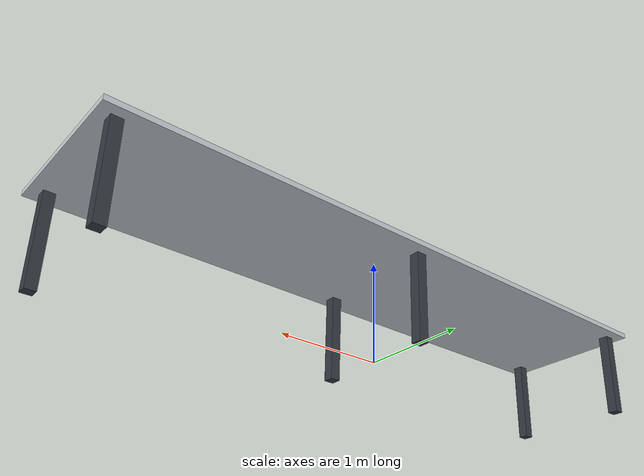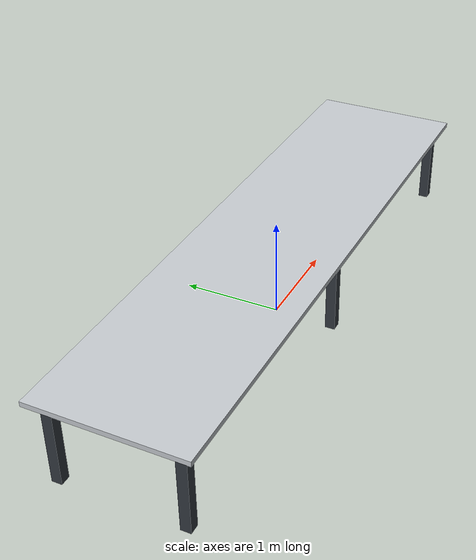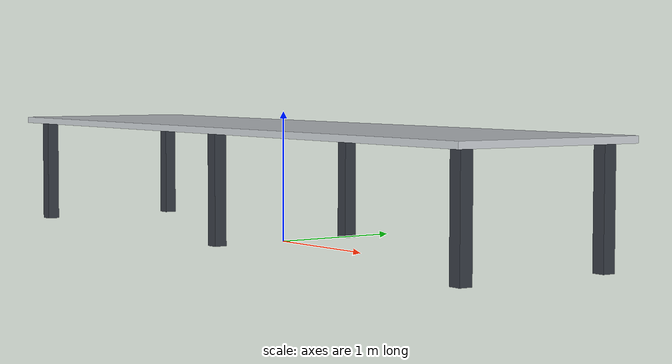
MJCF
<?xml version="1.0" encoding="utf-8"?>
<!-- Generated by scripts/generate_minihannover.py - do not edit by hand. -->
<mujoco model="minihannover">
  <compiler angle="radian" autolimits="true"/>

  <worldbody>
    <body name="minihannover" pos="0 0 0">
      <geom name="minihannover_worktop" type="box" pos="0 0 0.875" size="3 0.75 0.025" density="700" rgba="0.78 0.8 0.82 1"/>
      <geom name="minihannover_leg_x0_y0" type="box" pos="-2.85 -0.6 0.425" size="0.05 0.05 0.425" density="800" rgba="0.2 0.22 0.25 1"/>
      <geom name="minihannover_leg_x0_y1" type="box" pos="-2.85 0.6 0.425" size="0.05 0.05 0.425" density="800" rgba="0.2 0.22 0.25 1"/>
      <geom name="minihannover_leg_x1_y0" type="box" pos="0 -0.6 0.425" size="0.05 0.05 0.425" density="800" rgba="0.2 0.22 0.25 1"/>
      <geom name="minihannover_leg_x1_y1" type="box" pos="0 0.6 0.425" size="0.05 0.05 0.425" density="800" rgba="0.2 0.22 0.25 1"/>
      <geom name="minihannover_leg_x2_y0" type="box" pos="2.85 -0.6 0.425" size="0.05 0.05 0.425" density="800" rgba="0.2 0.22 0.25 1"/>
      <geom name="minihannover_leg_x2_y1" type="box" pos="2.85 0.6 0.425" size="0.05 0.05 0.425" density="800" rgba="0.2 0.22 0.25 1"/>
    </body>
  </worldbody>
</mujoco>
